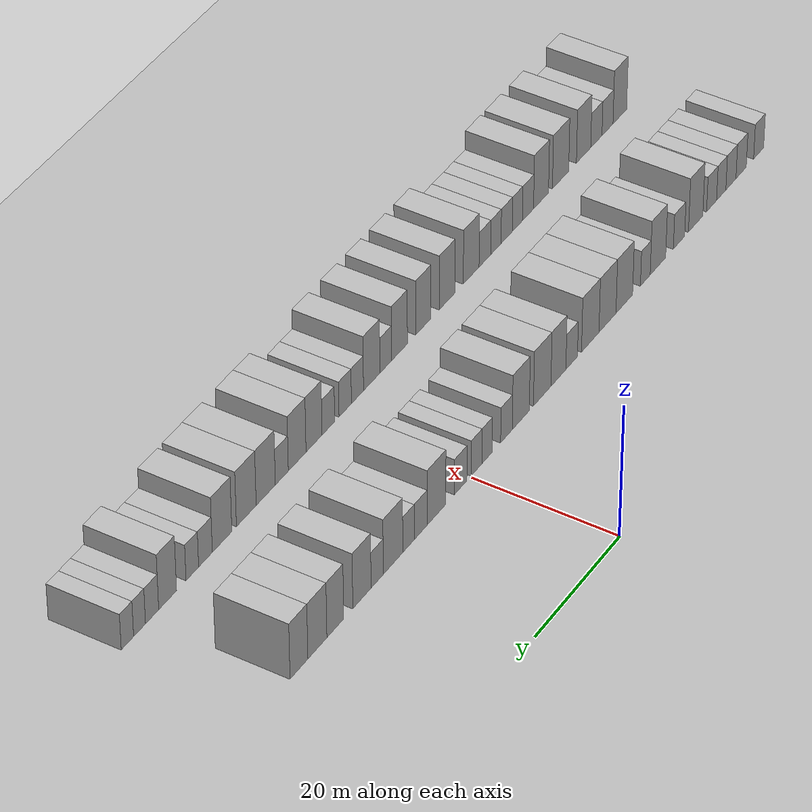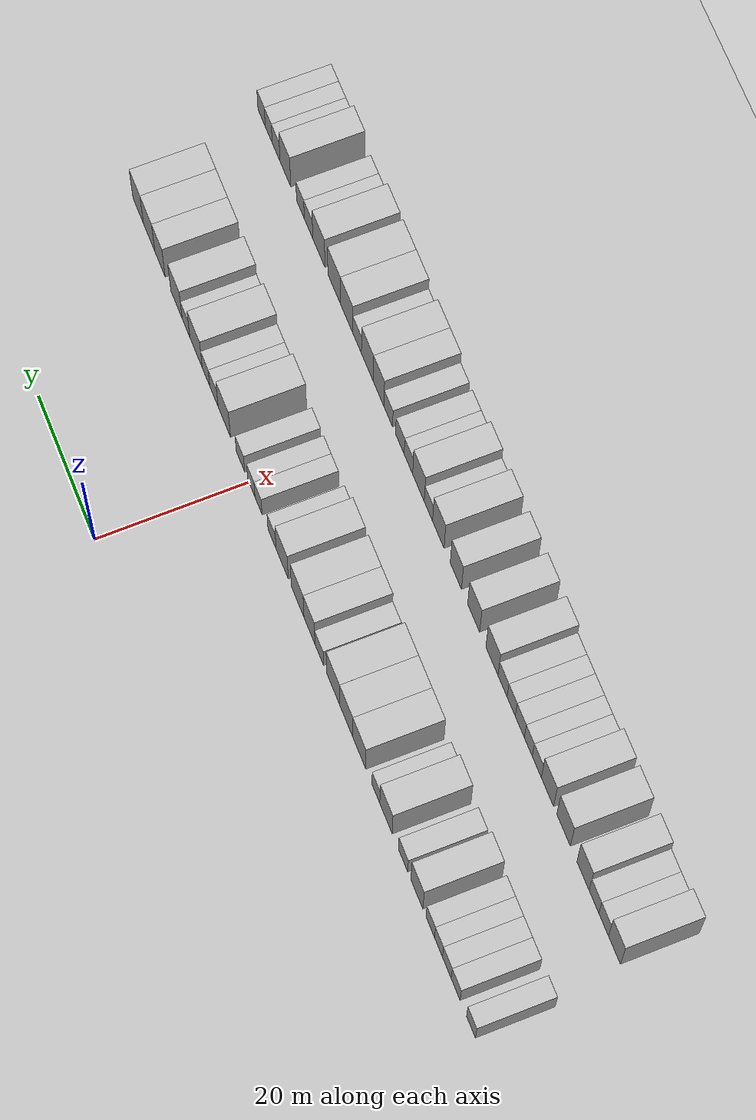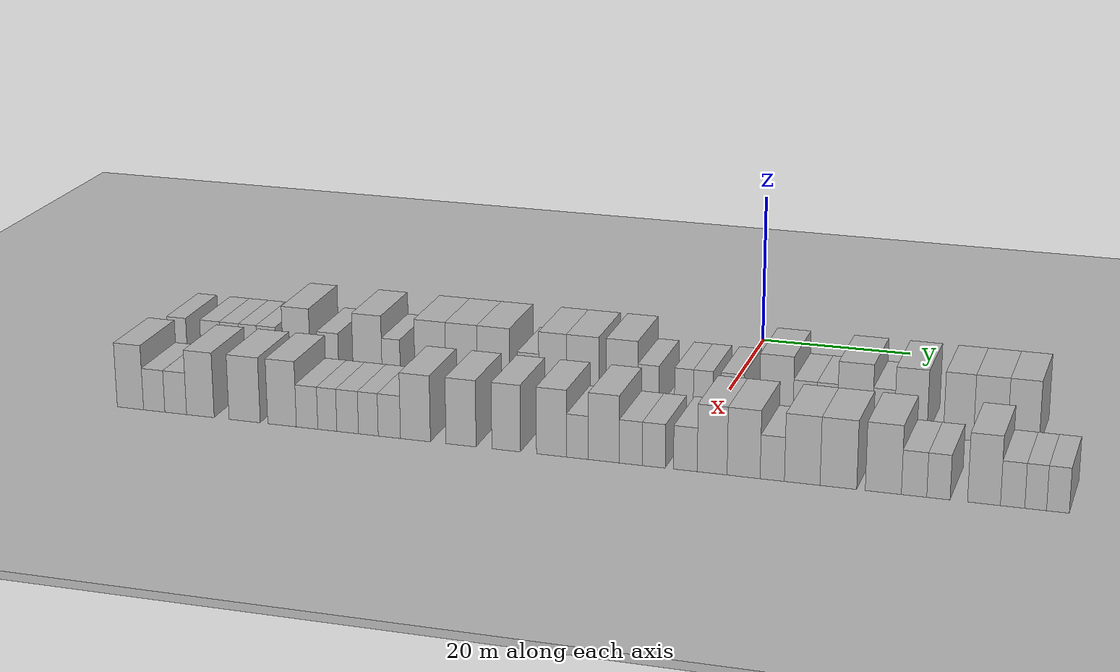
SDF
<sdf version="1.6">
 <world name="default">
  <include><name>ground_plane_1</name><uri>model://HANNAS_ground_plane</uri></include>
  <include>
   <name>ground_plane_2</name>
   <uri>model://HANNAS_ground_plane</uri>
   <pose>100 0 0  0 0 0</pose>
  </include>
  <model name="building_35">
   <static>1</static>
   <pose>25.0000 -72.3466 0 0.000000 0.000000 0.000000</pose>
   <link name="link">
    <pose>0 0 3.00 0 0 0</pose>
    <collision name="collision"><geometry><box><size>10.0000 2.7320 6.0000</size></box></geometry></collision>
    <visual name="visual">
     <cast_shadows>0</cast_shadows>
     <geometry><box><size>10.0000 2.7320 6.0000</size></box></geometry>
     <material>
      <script>
       <uri>model://HANNAS_wall/materials/scripts</uri>
       <uri>model://HANNAS_wall/materials/textures</uri>
       <name>vrc/HANNAS_wall</name>
      </script>
     </material>
    </visual>
   </link>
  </model>
  <model name="building_36">
   <static>1</static>
   <pose>25.0000 -67.5896 0 0.000000 0.000000 0.000000</pose>
   <link name="link">
    <pose>0 0 3.00 0 0 0</pose>
    <collision name="collision"><geometry><box><size>10.0000 2.7820 6.0000</size></box></geometry></collision>
    <visual name="visual">
     <cast_shadows>0</cast_shadows>
     <geometry><box><size>10.0000 2.7820 6.0000</size></box></geometry>
     <material>
      <script>
       <uri>model://HANNAS_wall/materials/scripts</uri>
       <uri>model://HANNAS_wall/materials/textures</uri>
       <name>vrc/HANNAS_wall</name>
      </script>
     </material>
    </visual>
   </link>
  </model>
  <model name="building_37">
   <static>1</static>
   <pose>25.0000 -64.8409 0 0.000000 0.000000 0.000000</pose>
   <link name="link">
    <pose>0 0 3.00 0 0 0</pose>
    <collision name="collision"><geometry><box><size>10.0000 2.7154 6.0000</size></box></geometry></collision>
    <visual name="visual">
     <cast_shadows>0</cast_shadows>
     <geometry><box><size>10.0000 2.7154 6.0000</size></box></geometry>
     <material>
      <script>
       <uri>model://HANNAS_wall/materials/scripts</uri>
       <uri>model://HANNAS_wall/materials/textures</uri>
       <name>vrc/HANNAS_wall</name>
      </script>
     </material>
    </visual>
   </link>
  </model>
  <model name="building_38">
   <static>1</static>
   <pose>25.0000 -62.2412 0 0.000000 0.000000 0.000000</pose>
   <link name="link">
    <pose>0 0 3.00 0 0 0</pose>
    <collision name="collision"><geometry><box><size>10.0000 2.4840 6.0000</size></box></geometry></collision>
    <visual name="visual">
     <cast_shadows>0</cast_shadows>
     <geometry><box><size>10.0000 2.4840 6.0000</size></box></geometry>
     <material>
      <script>
       <uri>model://HANNAS_wall/materials/scripts</uri>
       <uri>model://HANNAS_wall/materials/textures</uri>
       <name>vrc/HANNAS_wall</name>
      </script>
     </material>
    </visual>
   </link>
  </model>
  <model name="building_39">
   <static>1</static>
   <pose>25.0000 -59.6701 0 0.000000 0.000000 0.000000</pose>
   <link name="link">
    <pose>0 0 3.00 0 0 0</pose>
    <collision name="collision"><geometry><box><size>10.0000 2.6581 6.0000</size></box></geometry></collision>
    <visual name="visual">
     <cast_shadows>0</cast_shadows>
     <geometry><box><size>10.0000 2.6581 6.0000</size></box></geometry>
     <material>
      <script>
       <uri>model://HANNAS_wall/materials/scripts</uri>
       <uri>model://HANNAS_wall/materials/textures</uri>
       <name>vrc/HANNAS_wall</name>
      </script>
     </material>
    </visual>
   </link>
  </model>
  <model name="building_40">
   <static>1</static>
   <pose>25.0000 -55.4458 0 0.000000 0.000000 0.000000</pose>
   <link name="link">
    <pose>0 0 4.50 0 0 0</pose>
    <collision name="collision"><geometry><box><size>10.0000 3.7904 9.0000</size></box></geometry></collision>
    <visual name="visual">
     <cast_shadows>0</cast_shadows>
     <geometry><box><size>10.0000 3.7904 9.0000</size></box></geometry>
     <material>
      <script>
       <uri>model://HANNAS_wall/materials/scripts</uri>
       <uri>model://HANNAS_wall/materials/textures</uri>
       <name>vrc/HANNAS_wall</name>
      </script>
     </material>
    </visual>
   </link>
  </model>
  <model name="building_41">
   <static>1</static>
   <pose>25.0000 -51.0784 0 0.000000 0.000000 0.000000</pose>
   <link name="link">
    <pose>0 0 3.00 0 0 0</pose>
    <collision name="collision"><geometry><box><size>10.0000 2.9444 6.0000</size></box></geometry></collision>
    <visual name="visual">
     <cast_shadows>0</cast_shadows>
     <geometry><box><size>10.0000 2.9444 6.0000</size></box></geometry>
     <material>
      <script>
       <uri>model://HANNAS_wall/materials/scripts</uri>
       <uri>model://HANNAS_wall/materials/textures</uri>
       <name>vrc/HANNAS_wall</name>
      </script>
     </material>
    </visual>
   </link>
  </model>
  <model name="building_42">
   <static>1</static>
   <pose>25.0000 -45.6107 0 0.000000 0.000000 0.000000</pose>
   <link name="link">
    <pose>0 0 4.50 0 0 0</pose>
    <collision name="collision"><geometry><box><size>10.0000 3.9909 9.0000</size></box></geometry></collision>
    <visual name="visual">
     <cast_shadows>0</cast_shadows>
     <geometry><box><size>10.0000 3.9909 9.0000</size></box></geometry>
     <material>
      <script>
       <uri>model://HANNAS_wall/materials/scripts</uri>
       <uri>model://HANNAS_wall/materials/textures</uri>
       <name>vrc/HANNAS_wall</name>
      </script>
     </material>
    </visual>
   </link>
  </model>
  <model name="building_43">
   <static>1</static>
   <pose>25.0000 -42.3640 0 0.000000 0.000000 0.000000</pose>
   <link name="link">
    <pose>0 0 3.00 0 0 0</pose>
    <collision name="collision"><geometry><box><size>10.0000 2.5026 6.0000</size></box></geometry></collision>
    <visual name="visual">
     <cast_shadows>0</cast_shadows>
     <geometry><box><size>10.0000 2.5026 6.0000</size></box></geometry>
     <material>
      <script>
       <uri>model://HANNAS_wall/materials/scripts</uri>
       <uri>model://HANNAS_wall/materials/textures</uri>
       <name>vrc/HANNAS_wall</name>
      </script>
     </material>
    </visual>
   </link>
  </model>
  <model name="building_44">
   <static>1</static>
   <pose>25.0000 -37.0086 0 0.000000 0.000000 0.000000</pose>
   <link name="link">
    <pose>0 0 4.50 0 0 0</pose>
    <collision name="collision"><geometry><box><size>10.0000 4.2082 9.0000</size></box></geometry></collision>
    <visual name="visual">
     <cast_shadows>0</cast_shadows>
     <geometry><box><size>10.0000 4.2082 9.0000</size></box></geometry>
     <material>
      <script>
       <uri>model://HANNAS_wall/materials/scripts</uri>
       <uri>model://HANNAS_wall/materials/textures</uri>
       <name>vrc/HANNAS_wall</name>
      </script>
     </material>
    </visual>
   </link>
  </model>
  <model name="building_45">
   <static>1</static>
   <pose>25.0000 -32.7683 0 0.000000 0.000000 0.000000</pose>
   <link name="link">
    <pose>0 0 4.50 0 0 0</pose>
    <collision name="collision"><geometry><box><size>10.0000 4.2723 9.0000</size></box></geometry></collision>
    <visual name="visual">
     <cast_shadows>0</cast_shadows>
     <geometry><box><size>10.0000 4.2723 9.0000</size></box></geometry>
     <material>
      <script>
       <uri>model://HANNAS_wall/materials/scripts</uri>
       <uri>model://HANNAS_wall/materials/textures</uri>
       <name>vrc/HANNAS_wall</name>
      </script>
     </material>
    </visual>
   </link>
  </model>
  <model name="building_46">
   <static>1</static>
   <pose>25.0000 -28.4604 0 0.000000 0.000000 0.000000</pose>
   <link name="link">
    <pose>0 0 4.50 0 0 0</pose>
    <collision name="collision"><geometry><box><size>10.0000 4.3434 9.0000</size></box></geometry></collision>
    <visual name="visual">
     <cast_shadows>0</cast_shadows>
     <geometry><box><size>10.0000 4.3434 9.0000</size></box></geometry>
     <material>
      <script>
       <uri>model://HANNAS_wall/materials/scripts</uri>
       <uri>model://HANNAS_wall/materials/textures</uri>
       <name>vrc/HANNAS_wall</name>
      </script>
     </material>
    </visual>
   </link>
  </model>
  <model name="building_47">
   <static>1</static>
   <pose>25.0000 -23.8618 0 0.000000 0.000000 0.000000</pose>
   <link name="link">
    <pose>0 0 3.00 0 0 0</pose>
    <collision name="collision"><geometry><box><size>10.0000 2.8538 6.0000</size></box></geometry></collision>
    <visual name="visual">
     <cast_shadows>0</cast_shadows>
     <geometry><box><size>10.0000 2.8538 6.0000</size></box></geometry>
     <material>
      <script>
       <uri>model://HANNAS_wall/materials/scripts</uri>
       <uri>model://HANNAS_wall/materials/textures</uri>
       <name>vrc/HANNAS_wall</name>
      </script>
     </material>
    </visual>
   </link>
  </model>
  <model name="building_48">
   <static>1</static>
   <pose>25.0000 -20.6068 0 0.000000 0.000000 0.000000</pose>
   <link name="link">
    <pose>0 0 4.50 0 0 0</pose>
    <collision name="collision"><geometry><box><size>10.0000 3.6561 9.0000</size></box></geometry></collision>
    <visual name="visual">
     <cast_shadows>0</cast_shadows>
     <geometry><box><size>10.0000 3.6561 9.0000</size></box></geometry>
     <material>
      <script>
       <uri>model://HANNAS_wall/materials/scripts</uri>
       <uri>model://HANNAS_wall/materials/textures</uri>
       <name>vrc/HANNAS_wall</name>
      </script>
     </material>
    </visual>
   </link>
  </model>
  <model name="building_49">
   <static>1</static>
   <pose>25.0000 -16.6605 0 0.000000 0.000000 0.000000</pose>
   <link name="link">
    <pose>0 0 4.50 0 0 0</pose>
    <collision name="collision"><geometry><box><size>10.0000 4.2365 9.0000</size></box></geometry></collision>
    <visual name="visual">
     <cast_shadows>0</cast_shadows>
     <geometry><box><size>10.0000 4.2365 9.0000</size></box></geometry>
     <material>
      <script>
       <uri>model://HANNAS_wall/materials/scripts</uri>
       <uri>model://HANNAS_wall/materials/textures</uri>
       <name>vrc/HANNAS_wall</name>
      </script>
     </material>
    </visual>
   </link>
  </model>
  <model name="building_50">
   <static>1</static>
   <pose>25.0000 -11.5001 0 0.000000 0.000000 0.000000</pose>
   <link name="link">
    <pose>0 0 4.50 0 0 0</pose>
    <collision name="collision"><geometry><box><size>10.0000 4.0843 9.0000</size></box></geometry></collision>
    <visual name="visual">
     <cast_shadows>0</cast_shadows>
     <geometry><box><size>10.0000 4.0843 9.0000</size></box></geometry>
     <material>
      <script>
       <uri>model://HANNAS_wall/materials/scripts</uri>
       <uri>model://HANNAS_wall/materials/textures</uri>
       <name>vrc/HANNAS_wall</name>
      </script>
     </material>
    </visual>
   </link>
  </model>
  <model name="building_51">
   <static>1</static>
   <pose>25.0000 -8.0746 0 0.000000 0.000000 0.000000</pose>
   <link name="link">
    <pose>0 0 3.00 0 0 0</pose>
    <collision name="collision"><geometry><box><size>10.0000 2.7667 6.0000</size></box></geometry></collision>
    <visual name="visual">
     <cast_shadows>0</cast_shadows>
     <geometry><box><size>10.0000 2.7667 6.0000</size></box></geometry>
     <material>
      <script>
       <uri>model://HANNAS_wall/materials/scripts</uri>
       <uri>model://HANNAS_wall/materials/textures</uri>
       <name>vrc/HANNAS_wall</name>
      </script>
     </material>
    </visual>
   </link>
  </model>
  <model name="building_52">
   <static>1</static>
   <pose>25.0000 -3.4818 0 0.000000 0.000000 0.000000</pose>
   <link name="link">
    <pose>0 0 3.00 0 0 0</pose>
    <collision name="collision"><geometry><box><size>10.0000 2.4187 6.0000</size></box></geometry></collision>
    <visual name="visual">
     <cast_shadows>0</cast_shadows>
     <geometry><box><size>10.0000 2.4187 6.0000</size></box></geometry>
     <material>
      <script>
       <uri>model://HANNAS_wall/materials/scripts</uri>
       <uri>model://HANNAS_wall/materials/textures</uri>
       <name>vrc/HANNAS_wall</name>
      </script>
     </material>
    </visual>
   </link>
  </model>
  <model name="building_53">
   <static>1</static>
   <pose>25.0000 -1.0128 0 0.000000 0.000000 0.000000</pose>
   <link name="link">
    <pose>0 0 3.00 0 0 0</pose>
    <collision name="collision"><geometry><box><size>10.0000 2.5193 6.0000</size></box></geometry></collision>
    <visual name="visual">
     <cast_shadows>0</cast_shadows>
     <geometry><box><size>10.0000 2.5193 6.0000</size></box></geometry>
     <material>
      <script>
       <uri>model://HANNAS_wall/materials/scripts</uri>
       <uri>model://HANNAS_wall/materials/textures</uri>
       <name>vrc/HANNAS_wall</name>
      </script>
     </material>
    </visual>
   </link>
  </model>
  <model name="building_54">
   <static>1</static>
   <pose>25.0000 2.6914 0 0.000000 0.000000 0.000000</pose>
   <link name="link">
    <pose>0 0 3.00 0 0 0</pose>
    <collision name="collision"><geometry><box><size>10.0000 2.8892 6.0000</size></box></geometry></collision>
    <visual name="visual">
     <cast_shadows>0</cast_shadows>
     <geometry><box><size>10.0000 2.8892 6.0000</size></box></geometry>
     <material>
      <script>
       <uri>model://HANNAS_wall/materials/scripts</uri>
       <uri>model://HANNAS_wall/materials/textures</uri>
       <name>vrc/HANNAS_wall</name>
      </script>
     </material>
    </visual>
   </link>
  </model>
  <model name="building_55">
   <static>1</static>
   <pose>25.0000 8.2709 0 0.000000 0.000000 0.000000</pose>
   <link name="link">
    <pose>0 0 4.50 0 0 0</pose>
    <collision name="collision"><geometry><box><size>10.0000 4.2698 9.0000</size></box></geometry></collision>
    <visual name="visual">
     <cast_shadows>0</cast_shadows>
     <geometry><box><size>10.0000 4.2698 9.0000</size></box></geometry>
     <material>
      <script>
       <uri>model://HANNAS_wall/materials/scripts</uri>
       <uri>model://HANNAS_wall/materials/textures</uri>
       <name>vrc/HANNAS_wall</name>
      </script>
     </material>
    </visual>
   </link>
  </model>
  <model name="building_56">
   <static>1</static>
   <pose>25.0000 11.8664 0 0.000000 0.000000 0.000000</pose>
   <link name="link">
    <pose>0 0 3.00 0 0 0</pose>
    <collision name="collision"><geometry><box><size>10.0000 2.9211 6.0000</size></box></geometry></collision>
    <visual name="visual">
     <cast_shadows>0</cast_shadows>
     <geometry><box><size>10.0000 2.9211 6.0000</size></box></geometry>
     <material>
      <script>
       <uri>model://HANNAS_wall/materials/scripts</uri>
       <uri>model://HANNAS_wall/materials/textures</uri>
       <name>vrc/HANNAS_wall</name>
      </script>
     </material>
    </visual>
   </link>
  </model>
  <model name="building_57">
   <static>1</static>
   <pose>25.0000 14.6334 0 0.000000 0.000000 0.000000</pose>
   <link name="link">
    <pose>0 0 3.00 0 0 0</pose>
    <collision name="collision"><geometry><box><size>10.0000 2.6130 6.0000</size></box></geometry></collision>
    <visual name="visual">
     <cast_shadows>0</cast_shadows>
     <geometry><box><size>10.0000 2.6130 6.0000</size></box></geometry>
     <material>
      <script>
       <uri>model://HANNAS_wall/materials/scripts</uri>
       <uri>model://HANNAS_wall/materials/textures</uri>
       <name>vrc/HANNAS_wall</name>
      </script>
     </material>
    </visual>
   </link>
  </model>
  <model name="building_58">
   <static>1</static>
   <pose>25.0000 18.1228 0 0.000000 0.000000 0.000000</pose>
   <link name="link">
    <pose>0 0 4.50 0 0 0</pose>
    <collision name="collision"><geometry><box><size>10.0000 4.3657 9.0000</size></box></geometry></collision>
    <visual name="visual">
     <cast_shadows>0</cast_shadows>
     <geometry><box><size>10.0000 4.3657 9.0000</size></box></geometry>
     <material>
      <script>
       <uri>model://HANNAS_wall/materials/scripts</uri>
       <uri>model://HANNAS_wall/materials/textures</uri>
       <name>vrc/HANNAS_wall</name>
      </script>
     </material>
    </visual>
   </link>
  </model>
  <model name="building_59">
   <static>1</static>
   <pose>25.0000 21.6638 0 0.000000 0.000000 0.000000</pose>
   <link name="link">
    <pose>0 0 3.00 0 0 0</pose>
    <collision name="collision"><geometry><box><size>10.0000 2.7163 6.0000</size></box></geometry></collision>
    <visual name="visual">
     <cast_shadows>0</cast_shadows>
     <geometry><box><size>10.0000 2.7163 6.0000</size></box></geometry>
     <material>
      <script>
       <uri>model://HANNAS_wall/materials/scripts</uri>
       <uri>model://HANNAS_wall/materials/textures</uri>
       <name>vrc/HANNAS_wall</name>
      </script>
     </material>
    </visual>
   </link>
  </model>
  <model name="building_60">
   <static>1</static>
   <pose>25.0000 25.0352 0 0.000000 0.000000 0.000000</pose>
   <link name="link">
    <pose>0 0 4.50 0 0 0</pose>
    <collision name="collision"><geometry><box><size>10.0000 4.0266 9.0000</size></box></geometry></collision>
    <visual name="visual">
     <cast_shadows>0</cast_shadows>
     <geometry><box><size>10.0000 4.0266 9.0000</size></box></geometry>
     <material>
      <script>
       <uri>model://HANNAS_wall/materials/scripts</uri>
       <uri>model://HANNAS_wall/materials/textures</uri>
       <name>vrc/HANNAS_wall</name>
      </script>
     </material>
    </visual>
   </link>
  </model>
  <model name="building_61">
   <static>1</static>
   <pose>25.0000 30.8770 0 0.000000 0.000000 0.000000</pose>
   <link name="link">
    <pose>0 0 4.50 0 0 0</pose>
    <collision name="collision"><geometry><box><size>10.0000 3.6570 9.0000</size></box></geometry></collision>
    <visual name="visual">
     <cast_shadows>0</cast_shadows>
     <geometry><box><size>10.0000 3.6570 9.0000</size></box></geometry>
     <material>
      <script>
       <uri>model://HANNAS_wall/materials/scripts</uri>
       <uri>model://HANNAS_wall/materials/textures</uri>
       <name>vrc/HANNAS_wall</name>
      </script>
     </material>
    </visual>
   </link>
  </model>
  <model name="building_62">
   <static>1</static>
   <pose>25.0000 34.7551 0 0.000000 0.000000 0.000000</pose>
   <link name="link">
    <pose>0 0 4.50 0 0 0</pose>
    <collision name="collision"><geometry><box><size>10.0000 4.0992 9.0000</size></box></geometry></collision>
    <visual name="visual">
     <cast_shadows>0</cast_shadows>
     <geometry><box><size>10.0000 4.0992 9.0000</size></box></geometry>
     <material>
      <script>
       <uri>model://HANNAS_wall/materials/scripts</uri>
       <uri>model://HANNAS_wall/materials/textures</uri>
       <name>vrc/HANNAS_wall</name>
      </script>
     </material>
    </visual>
   </link>
  </model>
  <model name="building_63">
   <static>1</static>
   <pose>25.0000 38.7124 0 0.000000 0.000000 0.000000</pose>
   <link name="link">
    <pose>0 0 4.50 0 0 0</pose>
    <collision name="collision"><geometry><box><size>10.0000 3.8153 9.0000</size></box></geometry></collision>
    <visual name="visual">
     <cast_shadows>0</cast_shadows>
     <geometry><box><size>10.0000 3.8153 9.0000</size></box></geometry>
     <material>
      <script>
       <uri>model://HANNAS_wall/materials/scripts</uri>
       <uri>model://HANNAS_wall/materials/textures</uri>
       <name>vrc/HANNAS_wall</name>
      </script>
     </material>
    </visual>
   </link>
  </model>
  <model name="building_128">
   <static>1</static>
   <pose>44.0000 -70.0487 0 0.000000 0.000000 0.000000</pose>
   <link name="link">
    <pose>0 0 4.50 0 0 0</pose>
    <collision name="collision"><geometry><box><size>10.0000 3.6078 9.0000</size></box></geometry></collision>
    <visual name="visual">
     <cast_shadows>0</cast_shadows>
     <geometry><box><size>10.0000 3.6078 9.0000</size></box></geometry>
     <material>
      <script>
       <uri>model://HANNAS_wall/materials/scripts</uri>
       <uri>model://HANNAS_wall/materials/textures</uri>
       <name>vrc/HANNAS_wall</name>
      </script>
     </material>
    </visual>
   </link>
  </model>
  <model name="building_129">
   <static>1</static>
   <pose>44.0000 -66.7934 0 0.000000 0.000000 0.000000</pose>
   <link name="link">
    <pose>0 0 3.00 0 0 0</pose>
    <collision name="collision"><geometry><box><size>10.0000 2.9029 6.0000</size></box></geometry></collision>
    <visual name="visual">
     <cast_shadows>0</cast_shadows>
     <geometry><box><size>10.0000 2.9029 6.0000</size></box></geometry>
     <material>
      <script>
       <uri>model://HANNAS_wall/materials/scripts</uri>
       <uri>model://HANNAS_wall/materials/textures</uri>
       <name>vrc/HANNAS_wall</name>
      </script>
     </material>
    </visual>
   </link>
  </model>
  <model name="building_130">
   <static>1</static>
   <pose>44.0000 -63.8655 0 0.000000 0.000000 0.000000</pose>
   <link name="link">
    <pose>0 0 3.00 0 0 0</pose>
    <collision name="collision"><geometry><box><size>10.0000 2.9527 6.0000</size></box></geometry></collision>
    <visual name="visual">
     <cast_shadows>0</cast_shadows>
     <geometry><box><size>10.0000 2.9527 6.0000</size></box></geometry>
     <material>
      <script>
       <uri>model://HANNAS_wall/materials/scripts</uri>
       <uri>model://HANNAS_wall/materials/textures</uri>
       <name>vrc/HANNAS_wall</name>
      </script>
     </material>
    </visual>
   </link>
  </model>
  <model name="building_131">
   <static>1</static>
   <pose>44.0000 -60.5280 0 0.000000 0.000000 0.000000</pose>
   <link name="link">
    <pose>0 0 4.50 0 0 0</pose>
    <collision name="collision"><geometry><box><size>10.0000 3.7224 9.0000</size></box></geometry></collision>
    <visual name="visual">
     <cast_shadows>0</cast_shadows>
     <geometry><box><size>10.0000 3.7224 9.0000</size></box></geometry>
     <material>
      <script>
       <uri>model://HANNAS_wall/materials/scripts</uri>
       <uri>model://HANNAS_wall/materials/textures</uri>
       <name>vrc/HANNAS_wall</name>
      </script>
     </material>
    </visual>
   </link>
  </model>
  <model name="building_132">
   <static>1</static>
   <pose>44.0000 -54.5819 0 0.000000 0.000000 0.000000</pose>
   <link name="link">
    <pose>0 0 4.50 0 0 0</pose>
    <collision name="collision"><geometry><box><size>10.0000 4.1697 9.0000</size></box></geometry></collision>
    <visual name="visual">
     <cast_shadows>0</cast_shadows>
     <geometry><box><size>10.0000 4.1697 9.0000</size></box></geometry>
     <material>
      <script>
       <uri>model://HANNAS_wall/materials/scripts</uri>
       <uri>model://HANNAS_wall/materials/textures</uri>
       <name>vrc/HANNAS_wall</name>
      </script>
     </material>
    </visual>
   </link>
  </model>
  <model name="building_133">
   <static>1</static>
   <pose>44.0000 -49.5979 0 0.000000 0.000000 0.000000</pose>
   <link name="link">
    <pose>0 0 4.50 0 0 0</pose>
    <collision name="collision"><geometry><box><size>10.0000 3.7982 9.0000</size></box></geometry></collision>
    <visual name="visual">
     <cast_shadows>0</cast_shadows>
     <geometry><box><size>10.0000 3.7982 9.0000</size></box></geometry>
     <material>
      <script>
       <uri>model://HANNAS_wall/materials/scripts</uri>
       <uri>model://HANNAS_wall/materials/textures</uri>
       <name>vrc/HANNAS_wall</name>
      </script>
     </material>
    </visual>
   </link>
  </model>
  <model name="building_134">
   <static>1</static>
   <pose>44.0000 -46.2861 0 0.000000 0.000000 0.000000</pose>
   <link name="link">
    <pose>0 0 3.00 0 0 0</pose>
    <collision name="collision"><geometry><box><size>10.0000 2.8253 6.0000</size></box></geometry></collision>
    <visual name="visual">
     <cast_shadows>0</cast_shadows>
     <geometry><box><size>10.0000 2.8253 6.0000</size></box></geometry>
     <material>
      <script>
       <uri>model://HANNAS_wall/materials/scripts</uri>
       <uri>model://HANNAS_wall/materials/textures</uri>
       <name>vrc/HANNAS_wall</name>
      </script>
     </material>
    </visual>
   </link>
  </model>
  <model name="building_135">
   <static>1</static>
   <pose>44.0000 -43.6224 0 0.000000 0.000000 0.000000</pose>
   <link name="link">
    <pose>0 0 3.00 0 0 0</pose>
    <collision name="collision"><geometry><box><size>10.0000 2.5020 6.0000</size></box></geometry></collision>
    <visual name="visual">
     <cast_shadows>0</cast_shadows>
     <geometry><box><size>10.0000 2.5020 6.0000</size></box></geometry>
     <material>
      <script>
       <uri>model://HANNAS_wall/materials/scripts</uri>
       <uri>model://HANNAS_wall/materials/textures</uri>
       <name>vrc/HANNAS_wall</name>
      </script>
     </material>
    </visual>
   </link>
  </model>
  <model name="building_136">
   <static>1</static>
   <pose>44.0000 -40.9588 0 0.000000 0.000000 0.000000</pose>
   <link name="link">
    <pose>0 0 3.00 0 0 0</pose>
    <collision name="collision"><geometry><box><size>10.0000 2.8252 6.0000</size></box></geometry></collision>
    <visual name="visual">
     <cast_shadows>0</cast_shadows>
     <geometry><box><size>10.0000 2.8252 6.0000</size></box></geometry>
     <material>
      <script>
       <uri>model://HANNAS_wall/materials/scripts</uri>
       <uri>model://HANNAS_wall/materials/textures</uri>
       <name>vrc/HANNAS_wall</name>
      </script>
     </material>
    </visual>
   </link>
  </model>
  <model name="building_137">
   <static>1</static>
   <pose>44.0000 -38.2651 0 0.000000 0.000000 0.000000</pose>
   <link name="link">
    <pose>0 0 3.00 0 0 0</pose>
    <collision name="collision"><geometry><box><size>10.0000 2.5623 6.0000</size></box></geometry></collision>
    <visual name="visual">
     <cast_shadows>0</cast_shadows>
     <geometry><box><size>10.0000 2.5623 6.0000</size></box></geometry>
     <material>
      <script>
       <uri>model://HANNAS_wall/materials/scripts</uri>
       <uri>model://HANNAS_wall/materials/textures</uri>
       <name>vrc/HANNAS_wall</name>
      </script>
     </material>
    </visual>
   </link>
  </model>
  <model name="building_138">
   <static>1</static>
   <pose>44.0000 -35.5392 0 0.000000 0.000000 0.000000</pose>
   <link name="link">
    <pose>0 0 3.00 0 0 0</pose>
    <collision name="collision"><geometry><box><size>10.0000 2.8895 6.0000</size></box></geometry></collision>
    <visual name="visual">
     <cast_shadows>0</cast_shadows>
     <geometry><box><size>10.0000 2.8895 6.0000</size></box></geometry>
     <material>
      <script>
       <uri>model://HANNAS_wall/materials/scripts</uri>
       <uri>model://HANNAS_wall/materials/textures</uri>
       <name>vrc/HANNAS_wall</name>
      </script>
     </material>
    </visual>
   </link>
  </model>
  <model name="building_139">
   <static>1</static>
   <pose>44.0000 -32.1691 0 0.000000 0.000000 0.000000</pose>
   <link name="link">
    <pose>0 0 4.50 0 0 0</pose>
    <collision name="collision"><geometry><box><size>10.0000 3.8508 9.0000</size></box></geometry></collision>
    <visual name="visual">
     <cast_shadows>0</cast_shadows>
     <geometry><box><size>10.0000 3.8508 9.0000</size></box></geometry>
     <material>
      <script>
       <uri>model://HANNAS_wall/materials/scripts</uri>
       <uri>model://HANNAS_wall/materials/textures</uri>
       <name>vrc/HANNAS_wall</name>
      </script>
     </material>
    </visual>
   </link>
  </model>
  <model name="building_140">
   <static>1</static>
   <pose>44.0000 -26.3302 0 0.000000 0.000000 0.000000</pose>
   <link name="link">
    <pose>0 0 4.50 0 0 0</pose>
    <collision name="collision"><geometry><box><size>10.0000 3.8271 9.0000</size></box></geometry></collision>
    <visual name="visual">
     <cast_shadows>0</cast_shadows>
     <geometry><box><size>10.0000 3.8271 9.0000</size></box></geometry>
     <material>
      <script>
       <uri>model://HANNAS_wall/materials/scripts</uri>
       <uri>model://HANNAS_wall/materials/textures</uri>
       <name>vrc/HANNAS_wall</name>
      </script>
     </material>
    </visual>
   </link>
  </model>
  <model name="building_141">
   <static>1</static>
   <pose>44.0000 -20.6058 0 0.000000 0.000000 0.000000</pose>
   <link name="link">
    <pose>0 0 4.50 0 0 0</pose>
    <collision name="collision"><geometry><box><size>10.0000 3.6217 9.0000</size></box></geometry></collision>
    <visual name="visual">
     <cast_shadows>0</cast_shadows>
     <geometry><box><size>10.0000 3.6217 9.0000</size></box></geometry>
     <material>
      <script>
       <uri>model://HANNAS_wall/materials/scripts</uri>
       <uri>model://HANNAS_wall/materials/textures</uri>
       <name>vrc/HANNAS_wall</name>
      </script>
     </material>
    </visual>
   </link>
  </model>
  <model name="building_142">
   <static>1</static>
   <pose>44.0000 -14.9193 0 0.000000 0.000000 0.000000</pose>
   <link name="link">
    <pose>0 0 4.50 0 0 0</pose>
    <collision name="collision"><geometry><box><size>10.0000 3.7513 9.0000</size></box></geometry></collision>
    <visual name="visual">
     <cast_shadows>0</cast_shadows>
     <geometry><box><size>10.0000 3.7513 9.0000</size></box></geometry>
     <material>
      <script>
       <uri>model://HANNAS_wall/materials/scripts</uri>
       <uri>model://HANNAS_wall/materials/textures</uri>
       <name>vrc/HANNAS_wall</name>
      </script>
     </material>
    </visual>
   </link>
  </model>
  <model name="building_143">
   <static>1</static>
   <pose>44.0000 -11.6818 0 0.000000 0.000000 0.000000</pose>
   <link name="link">
    <pose>0 0 3.00 0 0 0</pose>
    <collision name="collision"><geometry><box><size>10.0000 2.7237 6.0000</size></box></geometry></collision>
    <visual name="visual">
     <cast_shadows>0</cast_shadows>
     <geometry><box><size>10.0000 2.7237 6.0000</size></box></geometry>
     <material>
      <script>
       <uri>model://HANNAS_wall/materials/scripts</uri>
       <uri>model://HANNAS_wall/materials/textures</uri>
       <name>vrc/HANNAS_wall</name>
      </script>
     </material>
    </visual>
   </link>
  </model>
  <model name="building_144">
   <static>1</static>
   <pose>44.0000 -8.4144 0 0.000000 0.000000 0.000000</pose>
   <link name="link">
    <pose>0 0 4.50 0 0 0</pose>
    <collision name="collision"><geometry><box><size>10.0000 3.8112 9.0000</size></box></geometry></collision>
    <visual name="visual">
     <cast_shadows>0</cast_shadows>
     <geometry><box><size>10.0000 3.8112 9.0000</size></box></geometry>
     <material>
      <script>
       <uri>model://HANNAS_wall/materials/scripts</uri>
       <uri>model://HANNAS_wall/materials/textures</uri>
       <name>vrc/HANNAS_wall</name>
      </script>
     </material>
    </visual>
   </link>
  </model>
  <model name="building_145">
   <static>1</static>
   <pose>44.0000 -5.1103 0 0.000000 0.000000 0.000000</pose>
   <link name="link">
    <pose>0 0 3.00 0 0 0</pose>
    <collision name="collision"><geometry><box><size>10.0000 2.7969 6.0000</size></box></geometry></collision>
    <visual name="visual">
     <cast_shadows>0</cast_shadows>
     <geometry><box><size>10.0000 2.7969 6.0000</size></box></geometry>
     <material>
      <script>
       <uri>model://HANNAS_wall/materials/scripts</uri>
       <uri>model://HANNAS_wall/materials/textures</uri>
       <name>vrc/HANNAS_wall</name>
      </script>
     </material>
    </visual>
   </link>
  </model>
  <model name="building_146">
   <static>1</static>
   <pose>44.0000 -2.2936 0 0.000000 0.000000 0.000000</pose>
   <link name="link">
    <pose>0 0 3.00 0 0 0</pose>
    <collision name="collision"><geometry><box><size>10.0000 2.8365 6.0000</size></box></geometry></collision>
    <visual name="visual">
     <cast_shadows>0</cast_shadows>
     <geometry><box><size>10.0000 2.8365 6.0000</size></box></geometry>
     <material>
      <script>
       <uri>model://HANNAS_wall/materials/scripts</uri>
       <uri>model://HANNAS_wall/materials/textures</uri>
       <name>vrc/HANNAS_wall</name>
      </script>
     </material>
    </visual>
   </link>
  </model>
  <model name="building_147">
   <static>1</static>
   <pose>44.0000 1.5605 0 0.000000 0.000000 0.000000</pose>
   <link name="link">
    <pose>0 0 3.00 0 0 0</pose>
    <collision name="collision"><geometry><box><size>10.0000 2.8717 6.0000</size></box></geometry></collision>
    <visual name="visual">
     <cast_shadows>0</cast_shadows>
     <geometry><box><size>10.0000 2.8717 6.0000</size></box></geometry>
     <material>
      <script>
       <uri>model://HANNAS_wall/materials/scripts</uri>
       <uri>model://HANNAS_wall/materials/textures</uri>
       <name>vrc/HANNAS_wall</name>
      </script>
     </material>
    </visual>
   </link>
  </model>
  <model name="building_148">
   <static>1</static>
   <pose>44.0000 4.8045 0 0.000000 0.000000 0.000000</pose>
   <link name="link">
    <pose>0 0 4.50 0 0 0</pose>
    <collision name="collision"><geometry><box><size>10.0000 3.6162 9.0000</size></box></geometry></collision>
    <visual name="visual">
     <cast_shadows>0</cast_shadows>
     <geometry><box><size>10.0000 3.6162 9.0000</size></box></geometry>
     <material>
      <script>
       <uri>model://HANNAS_wall/materials/scripts</uri>
       <uri>model://HANNAS_wall/materials/textures</uri>
       <name>vrc/HANNAS_wall</name>
      </script>
     </material>
    </visual>
   </link>
  </model>
  <model name="building_149">
   <static>1</static>
   <pose>44.0000 8.5937 0 0.000000 0.000000 0.000000</pose>
   <link name="link">
    <pose>0 0 4.50 0 0 0</pose>
    <collision name="collision"><geometry><box><size>10.0000 3.9621 9.0000</size></box></geometry></collision>
    <visual name="visual">
     <cast_shadows>0</cast_shadows>
     <geometry><box><size>10.0000 3.9621 9.0000</size></box></geometry>
     <material>
      <script>
       <uri>model://HANNAS_wall/materials/scripts</uri>
       <uri>model://HANNAS_wall/materials/textures</uri>
       <name>vrc/HANNAS_wall</name>
      </script>
     </material>
    </visual>
   </link>
  </model>
  <model name="building_150">
   <static>1</static>
   <pose>44.0000 12.0211 0 0.000000 0.000000 0.000000</pose>
   <link name="link">
    <pose>0 0 3.00 0 0 0</pose>
    <collision name="collision"><geometry><box><size>10.0000 2.8928 6.0000</size></box></geometry></collision>
    <visual name="visual">
     <cast_shadows>0</cast_shadows>
     <geometry><box><size>10.0000 2.8928 6.0000</size></box></geometry>
     <material>
      <script>
       <uri>model://HANNAS_wall/materials/scripts</uri>
       <uri>model://HANNAS_wall/materials/textures</uri>
       <name>vrc/HANNAS_wall</name>
      </script>
     </material>
    </visual>
   </link>
  </model>
  <model name="building_151">
   <static>1</static>
   <pose>44.0000 15.5782 0 0.000000 0.000000 0.000000</pose>
   <link name="link">
    <pose>0 0 4.50 0 0 0</pose>
    <collision name="collision"><geometry><box><size>10.0000 4.2213 9.0000</size></box></geometry></collision>
    <visual name="visual">
     <cast_shadows>0</cast_shadows>
     <geometry><box><size>10.0000 4.2213 9.0000</size></box></geometry>
     <material>
      <script>
       <uri>model://HANNAS_wall/materials/scripts</uri>
       <uri>model://HANNAS_wall/materials/textures</uri>
       <name>vrc/HANNAS_wall</name>
      </script>
     </material>
    </visual>
   </link>
  </model>
  <model name="building_152">
   <static>1</static>
   <pose>44.0000 19.8451 0 0.000000 0.000000 0.000000</pose>
   <link name="link">
    <pose>0 0 4.50 0 0 0</pose>
    <collision name="collision"><geometry><box><size>10.0000 4.3125 9.0000</size></box></geometry></collision>
    <visual name="visual">
     <cast_shadows>0</cast_shadows>
     <geometry><box><size>10.0000 4.3125 9.0000</size></box></geometry>
     <material>
      <script>
       <uri>model://HANNAS_wall/materials/scripts</uri>
       <uri>model://HANNAS_wall/materials/textures</uri>
       <name>vrc/HANNAS_wall</name>
      </script>
     </material>
    </visual>
   </link>
  </model>
  <model name="building_153">
   <static>1</static>
   <pose>44.0000 25.1036 0 0.000000 0.000000 0.000000</pose>
   <link name="link">
    <pose>0 0 4.50 0 0 0</pose>
    <collision name="collision"><geometry><box><size>10.0000 4.2046 9.0000</size></box></geometry></collision>
    <visual name="visual">
     <cast_shadows>0</cast_shadows>
     <geometry><box><size>10.0000 4.2046 9.0000</size></box></geometry>
     <material>
      <script>
       <uri>model://HANNAS_wall/materials/scripts</uri>
       <uri>model://HANNAS_wall/materials/textures</uri>
       <name>vrc/HANNAS_wall</name>
      </script>
     </material>
    </visual>
   </link>
  </model>
  <model name="building_154">
   <static>1</static>
   <pose>44.0000 28.6744 0 0.000000 0.000000 0.000000</pose>
   <link name="link">
    <pose>0 0 3.00 0 0 0</pose>
    <collision name="collision"><geometry><box><size>10.0000 2.9369 6.0000</size></box></geometry></collision>
    <visual name="visual">
     <cast_shadows>0</cast_shadows>
     <geometry><box><size>10.0000 2.9369 6.0000</size></box></geometry>
     <material>
      <script>
       <uri>model://HANNAS_wall/materials/scripts</uri>
       <uri>model://HANNAS_wall/materials/textures</uri>
       <name>vrc/HANNAS_wall</name>
      </script>
     </material>
    </visual>
   </link>
  </model>
  <model name="building_155">
   <static>1</static>
   <pose>44.0000 31.4859 0 0.000000 0.000000 0.000000</pose>
   <link name="link">
    <pose>0 0 3.00 0 0 0</pose>
    <collision name="collision"><geometry><box><size>10.0000 2.6860 6.0000</size></box></geometry></collision>
    <visual name="visual">
     <cast_shadows>0</cast_shadows>
     <geometry><box><size>10.0000 2.6860 6.0000</size></box></geometry>
     <material>
      <script>
       <uri>model://HANNAS_wall/materials/scripts</uri>
       <uri>model://HANNAS_wall/materials/textures</uri>
       <name>vrc/HANNAS_wall</name>
      </script>
     </material>
    </visual>
   </link>
  </model>
  <model name="building_156">
   <static>1</static>
   <pose>44.0000 36.7062 0 0.000000 0.000000 0.000000</pose>
   <link name="link">
    <pose>0 0 4.50 0 0 0</pose>
    <collision name="collision"><geometry><box><size>10.0000 3.7546 9.0000</size></box></geometry></collision>
    <visual name="visual">
     <cast_shadows>0</cast_shadows>
     <geometry><box><size>10.0000 3.7546 9.0000</size></box></geometry>
     <material>
      <script>
       <uri>model://HANNAS_wall/materials/scripts</uri>
       <uri>model://HANNAS_wall/materials/textures</uri>
       <name>vrc/HANNAS_wall</name>
      </script>
     </material>
    </visual>
   </link>
  </model>
  <model name="building_157">
   <static>1</static>
   <pose>44.0000 39.9616 0 0.000000 0.000000 0.000000</pose>
   <link name="link">
    <pose>0 0 3.00 0 0 0</pose>
    <collision name="collision"><geometry><box><size>10.0000 2.7561 6.0000</size></box></geometry></collision>
    <visual name="visual">
     <cast_shadows>0</cast_shadows>
     <geometry><box><size>10.0000 2.7561 6.0000</size></box></geometry>
     <material>
      <script>
       <uri>model://HANNAS_wall/materials/scripts</uri>
       <uri>model://HANNAS_wall/materials/textures</uri>
       <name>vrc/HANNAS_wall</name>
      </script>
     </material>
    </visual>
   </link>
  </model>
  <model name="building_158">
   <static>1</static>
   <pose>44.0000 42.5693 0 0.000000 0.000000 0.000000</pose>
   <link name="link">
    <pose>0 0 3.00 0 0 0</pose>
    <collision name="collision"><geometry><box><size>10.0000 2.4593 6.0000</size></box></geometry></collision>
    <visual name="visual">
     <cast_shadows>0</cast_shadows>
     <geometry><box><size>10.0000 2.4593 6.0000</size></box></geometry>
     <material>
      <script>
       <uri>model://HANNAS_wall/materials/scripts</uri>
       <uri>model://HANNAS_wall/materials/textures</uri>
       <name>vrc/HANNAS_wall</name>
      </script>
     </material>
    </visual>
   </link>
  </model>
  <model name="building_159">
   <static>1</static>
   <pose>44.0000 45.0776 0 0.000000 0.000000 0.000000</pose>
   <link name="link">
    <pose>0 0 3.00 0 0 0</pose>
    <collision name="collision"><geometry><box><size>10.0000 2.5573 6.0000</size></box></geometry></collision>
    <visual name="visual">
     <cast_shadows>0</cast_shadows>
     <geometry><box><size>10.0000 2.5573 6.0000</size></box></geometry>
     <material>
      <script>
       <uri>model://HANNAS_wall/materials/scripts</uri>
       <uri>model://HANNAS_wall/materials/textures</uri>
       <name>vrc/HANNAS_wall</name>
      </script>
     </material>
    </visual>
   </link>
  </model>
 </world>
</sdf>
